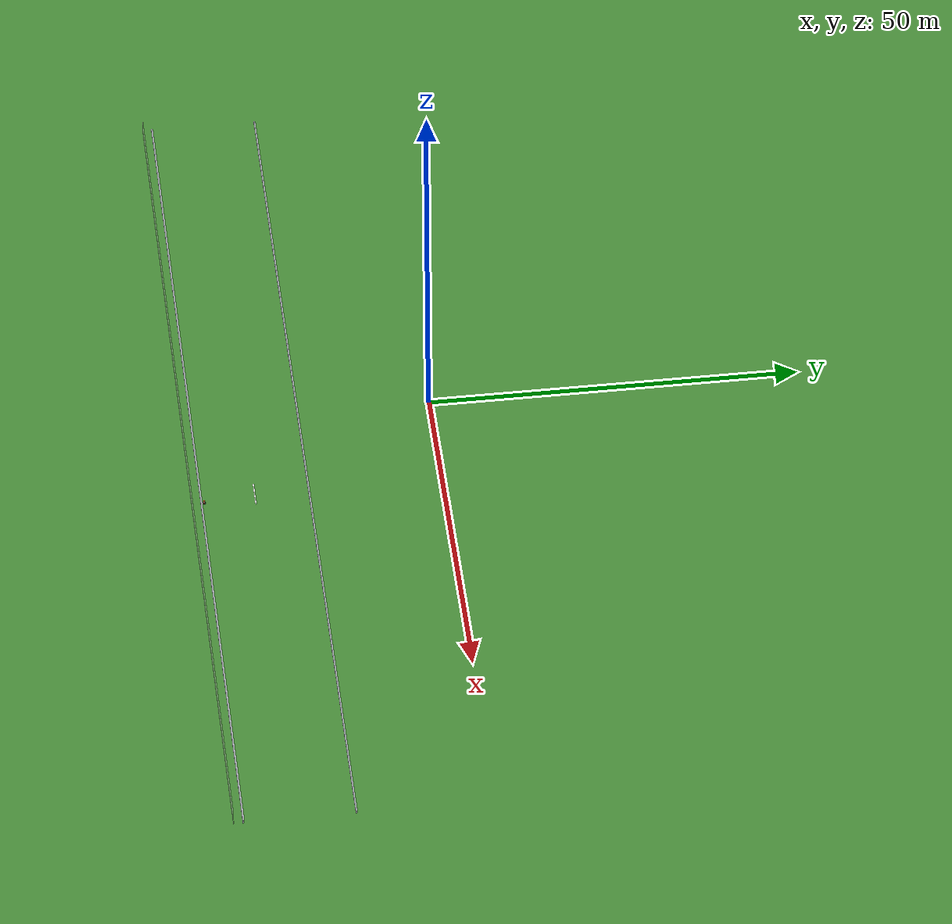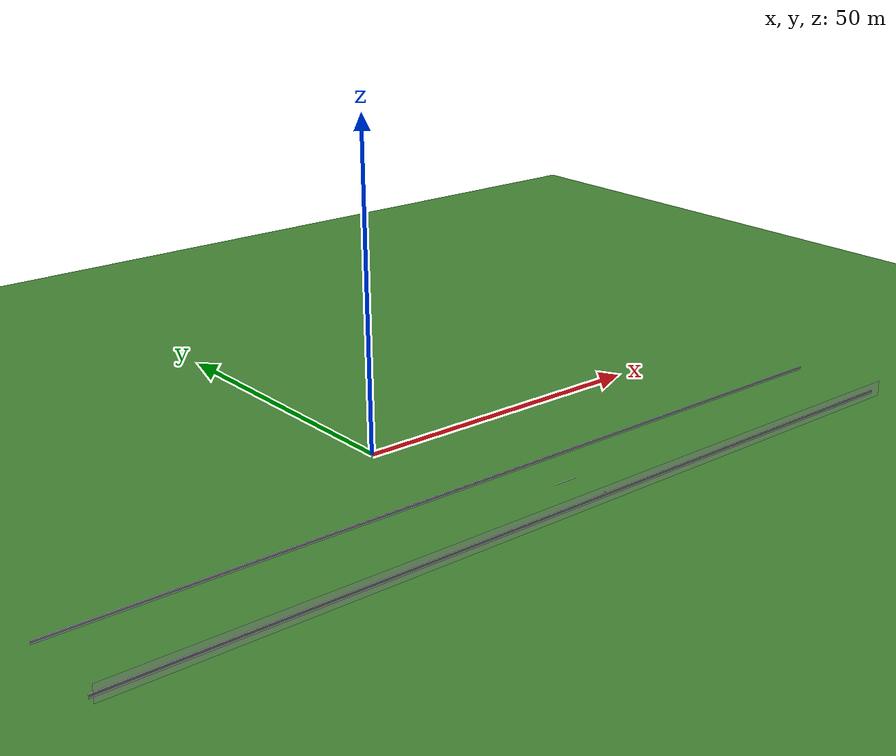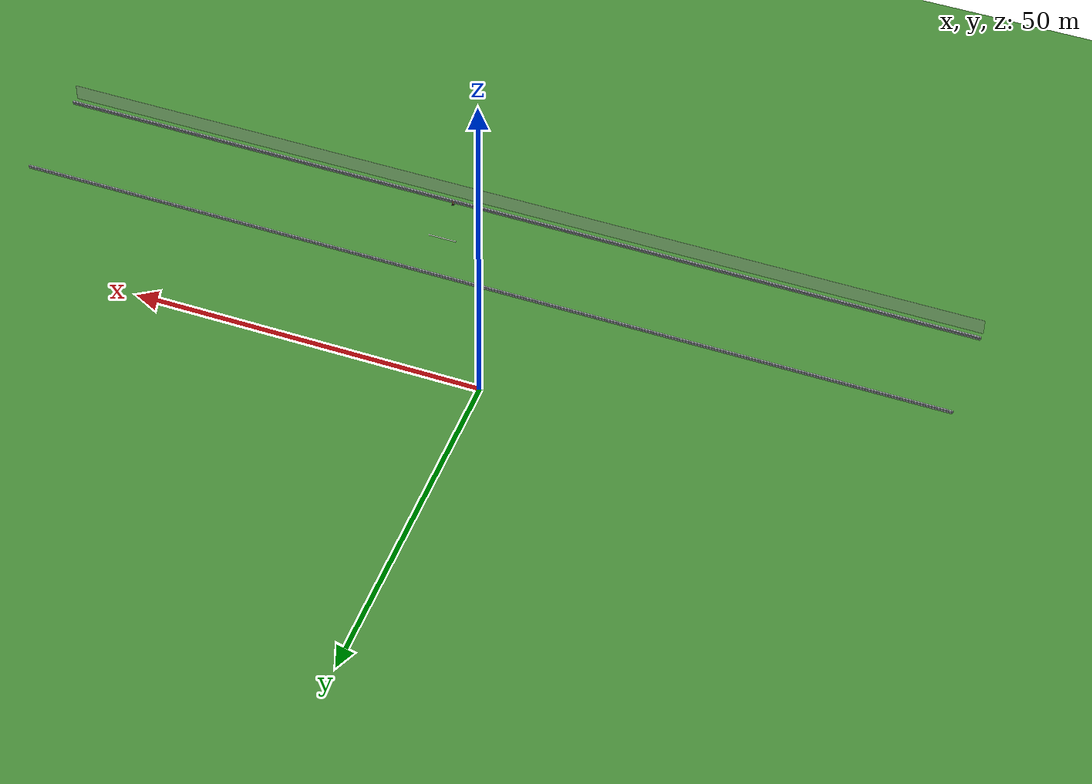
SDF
<sdf version="1.6">
 <world name="sem_silesia_ring_2026">
  <model name="ground_plane">
   <static>true</static>
   <link name="link">
    <collision name="collision">
     <geometry><plane><normal>0 0 1</normal><size>600 600</size></plane></geometry>
     <surface><friction><ode><mu>0.6</mu><mu2>0.6</mu2></ode></friction></surface>
    </collision>
    <visual name="visual">
     <geometry><plane><normal>0 0 1</normal><size>600 600</size></plane></geometry>
     <material><ambient>0.28 0.55 0.22 1</ambient><diffuse>0.28 0.55 0.22 1</diffuse></material>
    </visual>
   </link>
  </model>
  <model name="cd_s2_5">
   <static>true</static>
   <pose>15.0000 -25.0000 0.0050 0 0 0.0000</pose>
   <link name="link">
    <visual name="v">
     <geometry><box><size>4.0000 0.1500 0.0080</size></box></geometry>
     <material><ambient>1 1 1 1</ambient><diffuse>1 1 1 1</diffuse></material>
    </visual>
    <collision name="c">
     <geometry><box><size>4.0000 0.1500 0.0080</size></box></geometry>
     <surface><friction><ode><mu>0.9</mu><mu2>0.9</mu2></ode></friction></surface>
    </collision>
   </link>
  </model>
  <model name="arm_s2_n_main">
   <static>true</static>
   <pose>7.5000 -17.8000 0.2250 0 0 0.0000</pose>
   <link name="link">
    <visual name="v">
     <geometry><box><size>135.0000 0.2000 0.4500</size></box></geometry>
     <material><ambient>0.70 0.72 0.74 1</ambient><diffuse>0.70 0.72 0.74 1</diffuse></material>
    </visual>
    <collision name="c">
     <geometry><box><size>135.0000 0.2000 0.4500</size></box></geometry>
     <surface><friction><ode><mu>0.9</mu><mu2>0.9</mu2></ode></friction></surface>
    </collision>
   </link>
  </model>
  <model name="arm_s2_n_rib1">
   <static>true</static>
   <pose>7.5000 -17.8000 0.2750 0 0 0.0000</pose>
   <link name="link">
    <visual name="v">
     <geometry><box><size>135.0000 0.2200 0.0800</size></box></geometry>
     <material><ambient>0.70 0.72 0.74 1</ambient><diffuse>0.70 0.72 0.74 1</diffuse></material>
    </visual>
    <collision name="c">
     <geometry><box><size>135.0000 0.2200 0.0800</size></box></geometry>
     <surface><friction><ode><mu>0.9</mu><mu2>0.9</mu2></ode></friction></surface>
    </collision>
   </link>
  </model>
  <model name="arm_s2_s_main">
   <static>true</static>
   <pose>7.5000 -32.2000 0.2250 0 0 0.0000</pose>
   <link name="link">
    <visual name="v">
     <geometry><box><size>135.0000 0.2000 0.4500</size></box></geometry>
     <material><ambient>0.70 0.72 0.74 1</ambient><diffuse>0.70 0.72 0.74 1</diffuse></material>
    </visual>
    <collision name="c">
     <geometry><box><size>135.0000 0.2000 0.4500</size></box></geometry>
     <surface><friction><ode><mu>0.9</mu><mu2>0.9</mu2></ode></friction></surface>
    </collision>
   </link>
  </model>
  <model name="arm_s2_s_rib1">
   <static>true</static>
   <pose>7.5000 -32.2000 0.2750 0 0 0.0000</pose>
   <link name="link">
    <visual name="v">
     <geometry><box><size>135.0000 0.2200 0.0800</size></box></geometry>
     <material><ambient>0.70 0.72 0.74 1</ambient><diffuse>0.70 0.72 0.74 1</diffuse></material>
    </visual>
    <collision name="c">
     <geometry><box><size>135.0000 0.2200 0.0800</size></box></geometry>
     <surface><friction><ode><mu>0.9</mu><mu2>0.9</mu2></ode></friction></surface>
    </collision>
   </link>
  </model>
  <model name="arm_s2_s_rib2">
   <static>true</static>
   <pose>7.5000 -32.2000 0.3750 0 0 0.0000</pose>
   <link name="link">
    <visual name="v">
     <geometry><box><size>135.0000 0.2200 0.0800</size></box></geometry>
     <material><ambient>0.70 0.72 0.74 1</ambient><diffuse>0.70 0.72 0.74 1</diffuse></material>
    </visual>
    <collision name="c">
     <geometry><box><size>135.0000 0.2200 0.0800</size></box></geometry>
     <surface><friction><ode><mu>0.9</mu><mu2>0.9</mu2></ode></friction></surface>
    </collision>
   </link>
  </model>
  <model name="arm_s2_s_rib3">
   <static>true</static>
   <pose>7.5000 -32.2000 0.4750 0 0 0.0000</pose>
   <link name="link">
    <visual name="v">
     <geometry><box><size>135.0000 0.2200 0.0800</size></box></geometry>
     <material><ambient>0.70 0.72 0.74 1</ambient><diffuse>0.70 0.72 0.74 1</diffuse></material>
    </visual>
    <collision name="c">
     <geometry><box><size>135.0000 0.2200 0.0800</size></box></geometry>
     <surface><friction><ode><mu>0.9</mu><mu2>0.9</mu2></ode></friction></surface>
    </collision>
   </link>
  </model>
  <model name="fence_s2_s">
   <static>true</static>
   <pose>7.5000 -33.5000 1.2000 0 0 0.0000</pose>
   <link name="link">
    <visual name="v">
     <geometry><box><size>135.0000 0.0500 2.4000</size></box></geometry>
     <material><ambient>0.78 0.78 0.78 0.4</ambient><diffuse>0.78 0.78 0.78 0.4</diffuse></material>
    </visual>
    <collision name="c">
     <geometry><box><size>135.0000 0.0500 2.4000</size></box></geometry>
     <surface><friction><ode><mu>0.9</mu><mu2>0.9</mu2></ode></friction></surface>
    </collision>
   </link>
  </model>
  <model name="cn_s2s_16">
   <static>true</static>
   <pose>16.0000 -31.8000 0 0 0 0</pose>
   <link name="link">
    <visual name="base">
     <pose>0 0 0.03 0 0 0</pose>
     <geometry><box><size>0.35 0.35 0.06</size></box></geometry>
     <material><ambient>0.08 0.08 0.08 1</ambient><diffuse>0.08 0.08 0.08 1</diffuse></material>
    </visual>
    <visual name="body">
     <pose>0 0 0.30 0 0 0</pose>
     <geometry><cylinder><radius>0.09</radius><length>0.50</length></cylinder></geometry>
     <material><ambient>1.0 0.38 0.0 1</ambient><diffuse>1.0 0.38 0.0 1</diffuse></material>
    </visual>
    <visual name="stripe">
     <pose>0 0 0.32 0 0 0</pose>
     <geometry><cylinder><radius>0.095</radius><length>0.12</length></cylinder></geometry>
     <material><ambient>1 1 1 1</ambient><diffuse>1 1 1 1</diffuse></material>
    </visual>
    <visual name="tip">
     <pose>0 0 0.57 0 0 0</pose>
     <geometry><sphere><radius>0.04</radius></sphere></geometry>
     <material><ambient>1.0 0.38 0.0 1</ambient><diffuse>1.0 0.38 0.0 1</diffuse></material>
    </visual>
    <collision name="c">
     <pose>0 0 0.28 0 0 0</pose>
     <geometry><cylinder><radius>0.09</radius><length>0.56</length></cylinder></geometry>
    </collision>
   </link>
  </model>
 </world>
</sdf>
